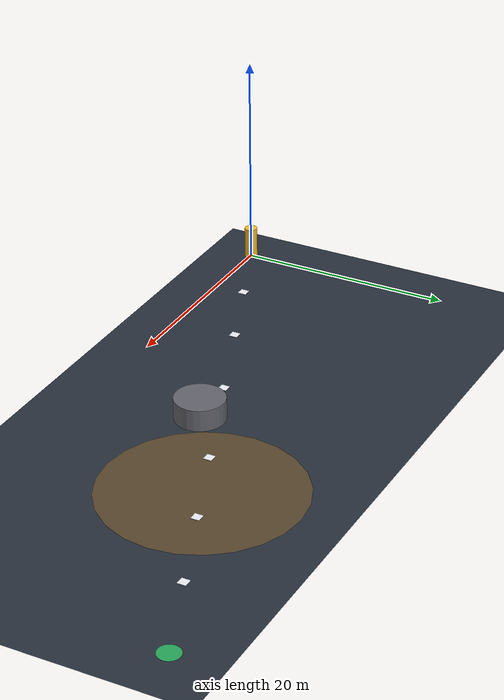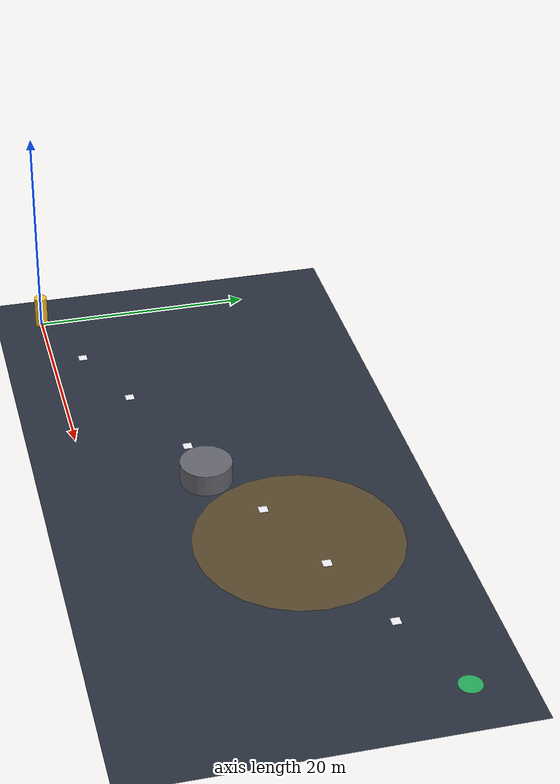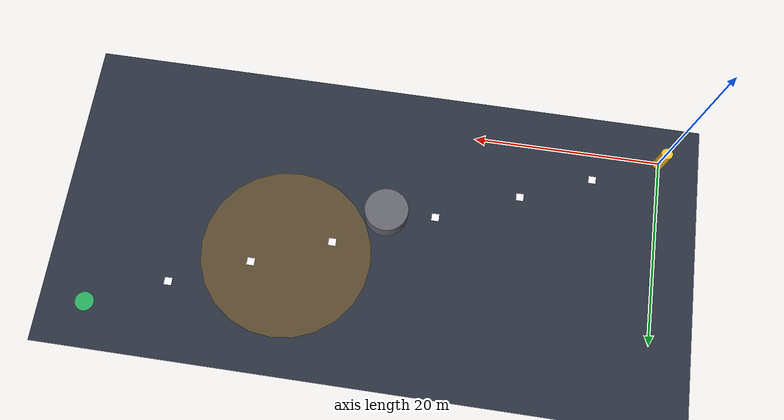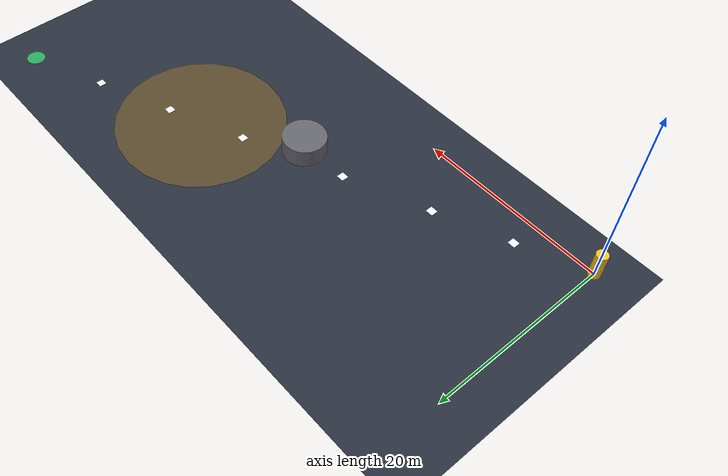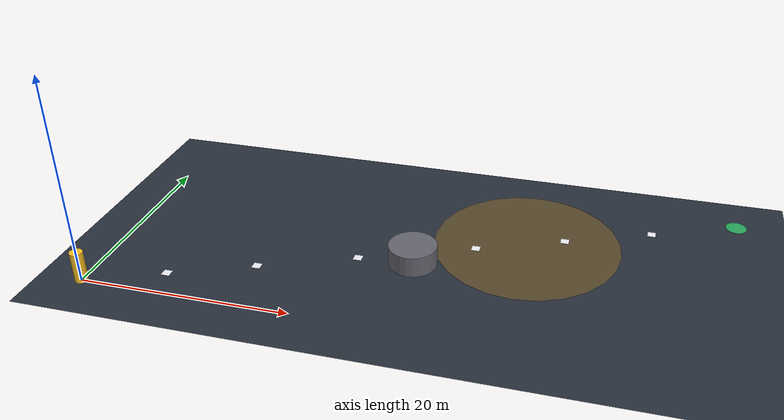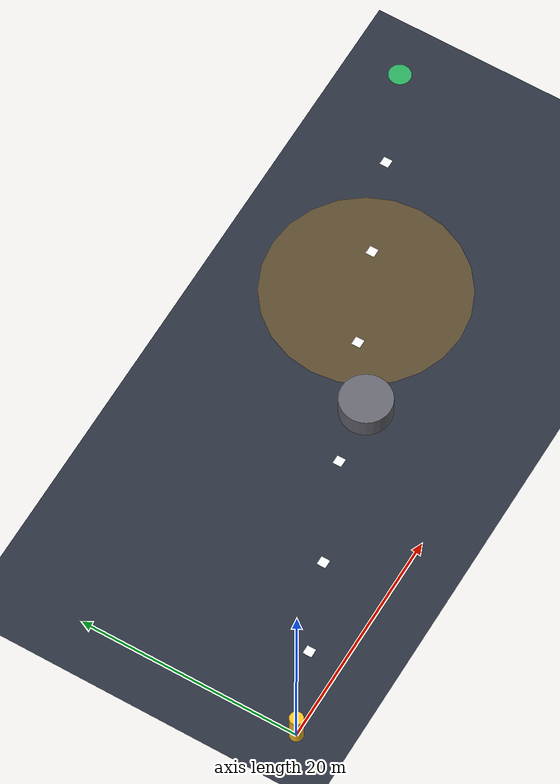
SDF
<?xml version="1.0" ?>
<sdf version="1.6">
  <world name="frugalnav">
    <gravity>0 0 -9.81</gravity>

    <light name="sun" type="directional">
      <cast_shadows>true</cast_shadows>
      <pose>0 0 30 0 0 0</pose>
      <diffuse>0.9 0.9 0.9 1</diffuse>
      <specular>0.2 0.2 0.2 1</specular>
      <direction>-0.4 0.3 -0.9</direction>
    </light>

    <model name="ground">
      <static>true</static>
      <link name="link">
        <collision name="c"><geometry><plane><normal>0 0 1</normal><size>200 200</size></plane></geometry></collision>
        <visual name="v">
          <geometry><plane><normal>0 0 1</normal><size>200 200</size></plane></geometry>
          <material><ambient>0.12 0.14 0.18 1</ambient><diffuse>0.16 0.19 0.24 1</diffuse></material>
        </visual>
      </link>
    </model>

    <!-- feature-poor "hard patch" (flat translucent disc) at frac 0.34 -->
    <model name="hard_patch">
      <static>true</static>
      <pose>38.28 15.84 0.02 0 0 0</pose>
      <link name="link"><visual name="v">
        <geometry><cylinder><radius>9.0</radius><length>0.02</length></cylinder></geometry>
        <material><ambient>0.96 0.62 0.04 0.25</ambient><diffuse>0.96 0.62 0.04 0.25</diffuse></material>
      </visual></link>
    </model>

    <!-- obstacle at frac 0.52, lateral 1.5 -->
    <model name="obstacle">
      <static>true</static>
      <pose>28.41 10.13 1.0 0 0 0</pose>
      <link name="link">
        <collision name="c"><geometry><cylinder><radius>2.3</radius><length>2.0</length></cylinder></geometry></collision>
        <visual name="v">
          <geometry><cylinder><radius>2.3</radius><length>2.0</length></cylinder></geometry>
          <material><ambient>0.33 0.33 0.36 1</ambient><diffuse>0.4 0.4 0.44 1</diffuse></material>
        </visual>
      </link>
    </model>

    <!-- target pole at B=(0,0) -->
    <model name="target_B">
      <static>true</static>
      <pose>0 0 1.5 0 0 0</pose>
      <link name="link"><visual name="v">
        <geometry><cylinder><radius>0.6</radius><length>3.0</length></cylinder></geometry>
        <material><ambient>0.98 0.75 0.14 1</ambient><diffuse>0.98 0.75 0.14 1</diffuse><emissive>0.4 0.3 0.0 1</emissive></material>
      </visual></link>
    </model>

    <!-- ArUco-marker ground tiles along the route -->
    <model name="m0"><static>true</static><pose>49.88 20.64 0.03 0 0 0</pose><link name="l"><visual name="v"><geometry><box><size>0.8 0.8 0.05</size></box></geometry><material><ambient>0.95 0.95 0.98 1</ambient></material></visual></link></model>
    <model name="m1"><static>true</static><pose>41.76 17.28 0.03 0 0 0</pose><link name="l"><visual name="v"><geometry><box><size>0.8 0.8 0.05</size></box></geometry><material><ambient>0.95 0.95 0.98 1</ambient></material></visual></link></model>
    <model name="m2"><static>true</static><pose>33.64 13.92 0.03 0 0 0</pose><link name="l"><visual name="v"><geometry><box><size>0.8 0.8 0.05</size></box></geometry><material><ambient>0.95 0.95 0.98 1</ambient></material></visual></link></model>
    <model name="m3"><static>true</static><pose>23.2 9.6 0.03 0 0 0</pose><link name="l"><visual name="v"><geometry><box><size>0.8 0.8 0.05</size></box></geometry><material><ambient>0.95 0.95 0.98 1</ambient></material></visual></link></model>
    <model name="m4"><static>true</static><pose>14.5 6.0 0.03 0 0 0</pose><link name="l"><visual name="v"><geometry><box><size>0.8 0.8 0.05</size></box></geometry><material><ambient>0.95 0.95 0.98 1</ambient></material></visual></link></model>
    <model name="m5"><static>true</static><pose>6.96 2.88 0.03 0 0 0</pose><link name="l"><visual name="v"><geometry><box><size>0.8 0.8 0.05</size></box></geometry><material><ambient>0.95 0.95 0.98 1</ambient></material></visual></link></model>

    <model name="start_pad"><static>true</static><pose>58 24 0.02 0 0 0</pose><link name="l"><visual name="v"><geometry><cylinder><radius>1.0</radius><length>0.02</length></cylinder></geometry><material><ambient>0.2 0.83 0.44 0.8</ambient></material></visual></link></model>

    <physics name="ode" type="ode"><max_step_size>0.004</max_step_size><real_time_update_rate>250</real_time_update_rate></physics>
  </world>
</sdf>
